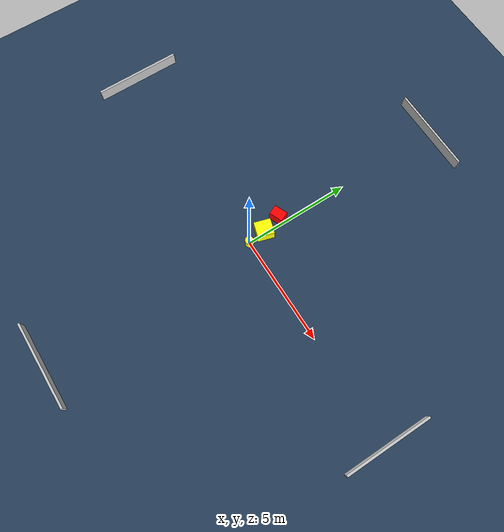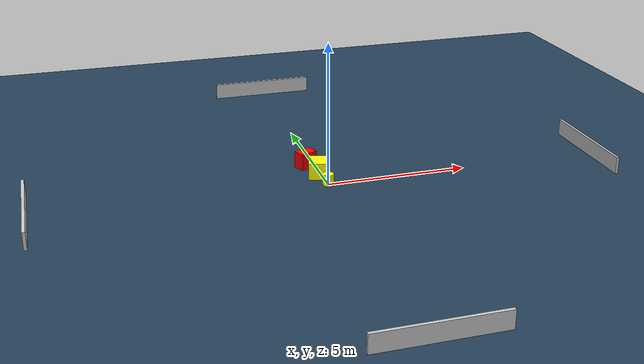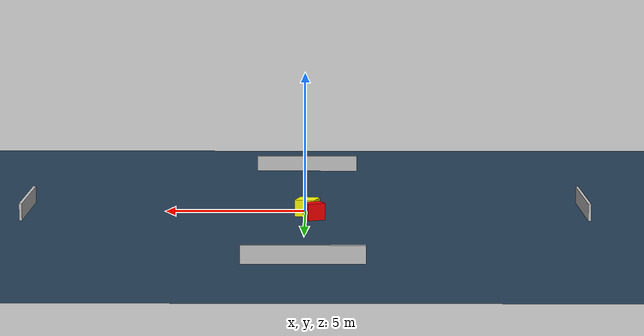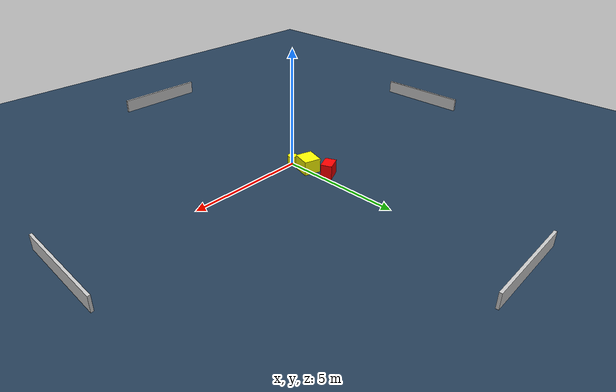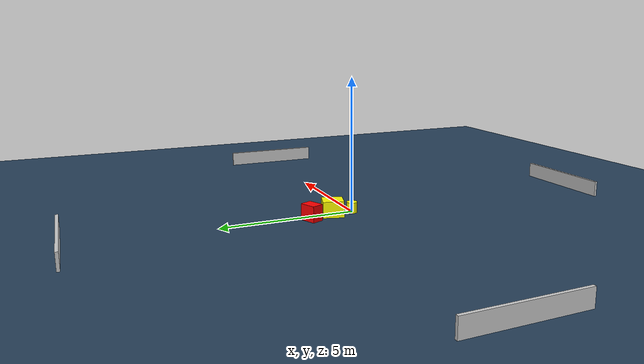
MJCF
<?xml version="1.0" ?>
<mujoco model="generated_environment">
  <option timestep="0.01" integrator="RK4" cone="elliptic"/>
  <default>
    <geom density="1"/>
  </default>
  <asset>
    <texture builtin="gradient" height="3072" name="skybox" rgb1="0.3 0.5 0.7" rgb2="0 0 0" type="skybox" width="512"/>
    <texture builtin="checker" height="300" name="groundplane" rgb1="0.2 0.3 0.4" rgb2="0.1 0.2 0.3" type="2d" width="300"/>
    <material name="groundplane" reflectance="0.2" texrepeat="5 5" texture="groundplane"/>
  </asset>
  <worldbody>
    <light dir="0 0 -1" directional="true" pos="0 0 1.5"/>
    <geom condim="3" friction="0.5 0.005 0.001" material="groundplane" name="floor" pos="0 0 0" size="0 0 0.05" type="plane"/>
    <body name="walls">
      <geom name="wall_1" condim="4" pos="-10.0 0.0 0.3" rgba="0.800000011920929 0.800000011920929 0.800000011920929 1.0" size="0.05 2.0 0.3" type="box"/>
      <geom name="wall_2" condim="4" pos="10.0 0.0 0.3" rgba="0.800000011920929 0.800000011920929 0.800000011920929 1.0" size="0.05 2.0 0.3" type="box"/>
      <geom name="wall_3" condim="4" pos="0.0 -10.0 0.3" rgba="0.800000011920929 0.800000011920929 0.800000011920929 1.0" size="2.0 0.05 0.3" type="box"/>
      <geom name="wall_4" condim="4" pos="0.0 10.0 0.3" rgba="0.800000011920929 0.800000011920929 0.800000011920929 1.0" size="2.0 0.05 0.3" type="box"/>
    </body>
    <body name="robot">
      <joint name="joint_x" type="slide" pos="0 0 0" axis="1 0 0"/>
      <joint name="joint_y" type="slide" pos="0 0 0" axis="0 1 0"/>
      <geom name="robot" type="cylinder" pos="0.0 0.0 0.2" size="0.2 0.2 0.0" mass="5.0" friction="1.0 0.005 0.0001" condim="4" rgba="1.0 1.0 0.0 1.0"/>
    </body>
    <body name="obstacle_1_movable">
      <geom name="obstacle_1_movable" condim="4" pos="-0.08473522902442045 0.8117736743380033 0.3" euler="0 0 253.51983275033004" friction="0.0 0.005 0.001" rgba="1.0 1.0 0.0 1.0" size="0.38592355731739003 0.35798385749520995 0.3" type="box" mass="0.1"/>
      <joint type="free"/>
    </body>
    <body name="obstacle_2_static">
      <geom name="obstacle_2_static" condim="4" pos="-0.32469722011979124 1.716991559349758 0.3" euler="0 0 23.096250937442534" friction="0.0 0.005 0.001" rgba="1.0 0.0 0.0 1.0" size="0.3193507057340433 0.23075826074582753 0.3" type="box"/>
    </body>
  </worldbody>
  <actuator>
    <motor name="actuator_x" joint="joint_x" gear="1" ctrlrange="-1 1"/>
    <motor name="actuator_y" joint="joint_y" gear="1" ctrlrange="-1 1"/>
  </actuator>
</mujoco>
